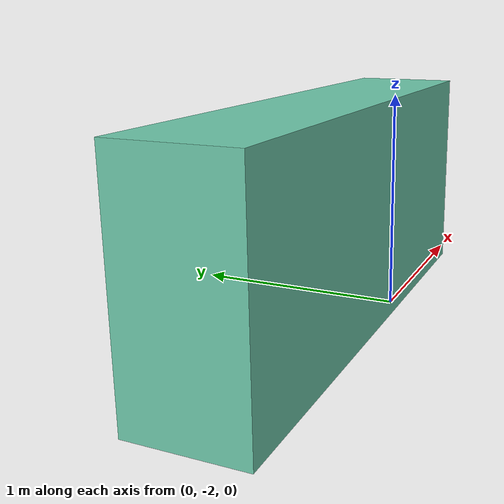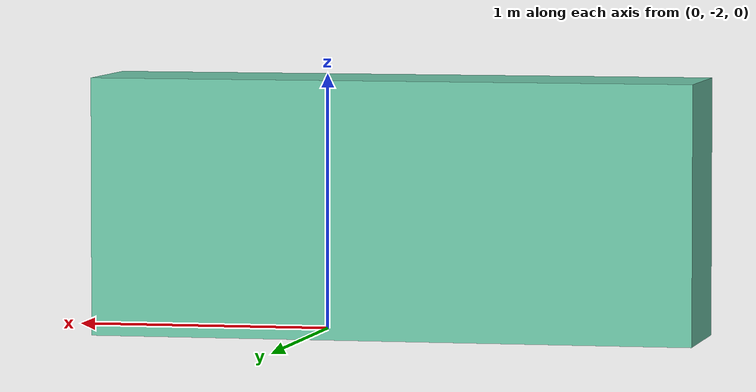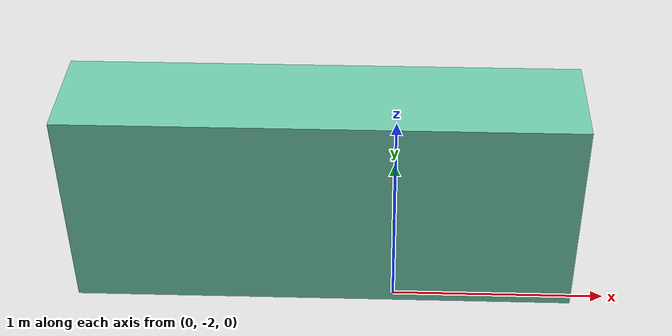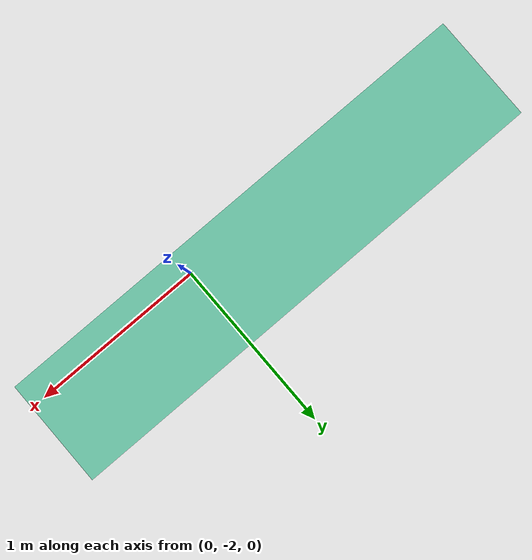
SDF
<?xml version='1.0'?>
<sdf version='1.7'>
  <model name='wall'>
    <pose>-0.335 -1.025 0 0 -0 0</pose>
    <link name='Wall_0'>
      <collision name='Wall_0_Collision'>
        <geometry>
          <box>
            <size>2.35 0.5 1</size>
          </box>
        </geometry>
        <pose>0 0 0.5 0 -0 0</pose>
      </collision>
      <visual name='Wall_0_Visual'>
        <pose>0 0 0.5 0 -0 0</pose>
        <geometry>
          <box>
            <size>2.35 0.5 1</size>
          </box>
        </geometry>
        <material>
          <script>
            <uri>file://media/materials/scripts/gazebo.material</uri>
            <name>Gazebo/Grey</name>
          </script>
          <ambient>0.435294 0.796078 0.67451 1</ambient>
        </material>
        <meta>
          <layer>0</layer>
        </meta>
      </visual>
      <pose>0 -0.775 0 0 -0 0</pose>
    </link>
    <static>1</static>
  </model>
</sdf>
